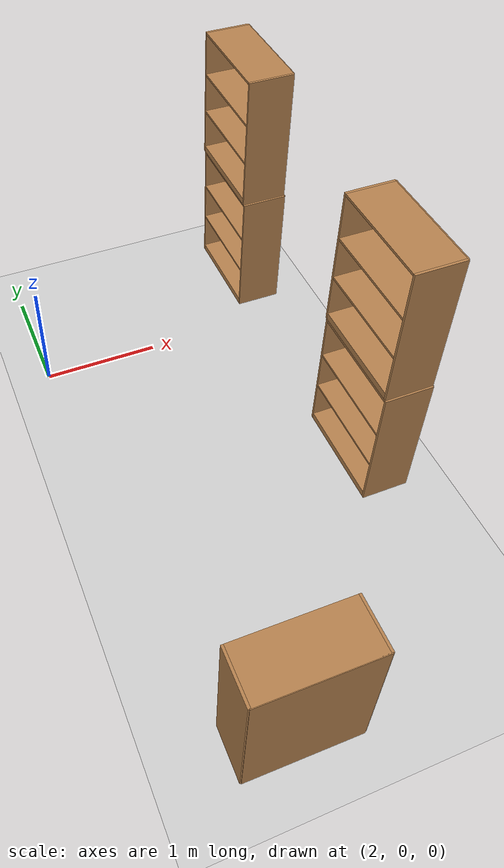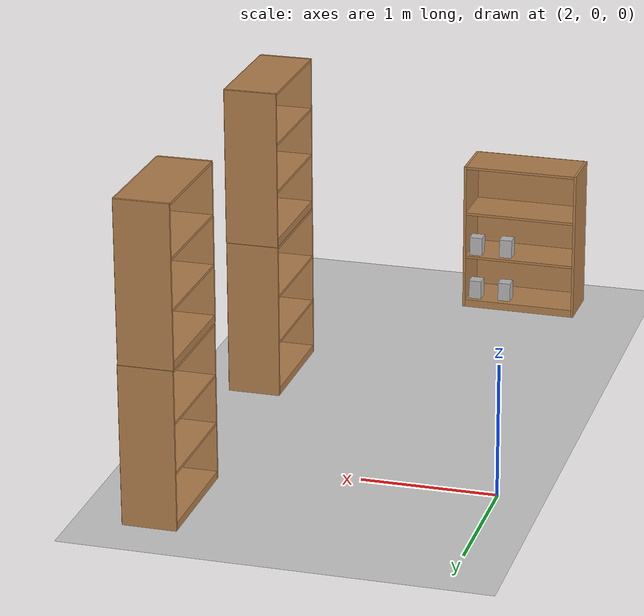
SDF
<sdf version="1.7">
 <world name="default">
  <model name="ground_plane">
   <static>1</static>
   <link name="link">
    <collision name="collision">
     <geometry><plane><normal>0 0 1</normal><size>100 100</size></plane></geometry>
     <surface><friction><ode><mu>100</mu><mu2>50</mu2></ode></friction></surface>
    </collision>
    <visual name="visual">
     <cast_shadows>0</cast_shadows>
     <geometry><plane><normal>0 0 1</normal><size>100 100</size></plane></geometry>
     <material>
      <script><uri>file://media/materials/scripts/gazebo.material</uri><name>Gazebo/Grey</name></script>
     </material>
    </visual>
   </link>
  </model>
  <model name="bookshelf_4_clone_1">
   <static>1</static>
   <link name="link">
    <inertial><mass>1</mass></inertial>
    <collision name="back">
     <pose>0 0.005 0.6 0 -0 0</pose>
     <geometry><box><size>0.9 0.01 1.2</size></box></geometry>
    </collision>
    <visual name="visual1">
     <pose>0 0.005 0.6 0 -0 0</pose>
     <geometry><box><size>0.9 0.01 1.2</size></box></geometry>
     <material>
      <script><uri>file://media/materials/scripts/gazebo.material</uri><name>Gazebo/Wood</name></script>
     </material>
    </visual>
    <collision name="left_side">
     <pose>0.45 -0.195 0.6 0 -0 0</pose>
     <geometry><box><size>0.02 0.4 1.2</size></box></geometry>
    </collision>
    <visual name="visual2">
     <pose>0.45 -0.195 0.6 0 -0 0</pose>
     <geometry><box><size>0.02 0.4 1.2</size></box></geometry>
     <material>
      <script><uri>file://media/materials/scripts/gazebo.material</uri><name>Gazebo/Wood</name></script>
     </material>
    </visual>
    <collision name="right_side">
     <pose>-0.45 -0.195 0.6 0 -0 0</pose>
     <geometry><box><size>0.02 0.4 1.2</size></box></geometry>
    </collision>
    <visual name="visual3">
     <pose>-0.45 -0.195 0.6 0 -0 0</pose>
     <geometry><box><size>0.02 0.4 1.2</size></box></geometry>
     <material>
      <script><uri>file://media/materials/scripts/gazebo.material</uri><name>Gazebo/Wood</name></script>
     </material>
    </visual>
    <collision name="bottom">
     <pose>0 -0.195 0.03 0 -0 0</pose>
     <geometry><box><size>0.88 0.4 0.06</size></box></geometry>
    </collision>
    <visual name="visual4">
     <pose>0 -0.195 0.03 0 -0 0</pose>
     <geometry><box><size>0.88 0.4 0.06</size></box></geometry>
     <material>
      <script><uri>file://media/materials/scripts/gazebo.material</uri><name>Gazebo/Wood</name></script>
     </material>
    </visual>
    <collision name="top">
     <pose>0 -0.195 1.19 0 -0 0</pose>
     <geometry><box><size>0.88 0.4 0.02</size></box></geometry>
    </collision>
    <visual name="visual5">
     <pose>0 -0.195 1.19 0 -0 0</pose>
     <geometry><box><size>0.88 0.4 0.02</size></box></geometry>
     <material>
      <script><uri>file://media/materials/scripts/gazebo.material</uri><name>Gazebo/Wood</name></script>
     </material>
    </visual>
    <collision name="low_shelf">
     <pose>0 -0.195 0.43 0 -0 0</pose>
     <geometry><box><size>0.88 0.4 0.02</size></box></geometry>
    </collision>
    <visual name="visual6">
     <pose>0 -0.195 0.43 0 -0 0</pose>
     <geometry><box><size>0.88 0.4 0.02</size></box></geometry>
     <material>
      <script><uri>file://media/materials/scripts/gazebo.material</uri><name>Gazebo/Wood</name></script>
     </material>
    </visual>
    <collision name="high_shelf">
     <pose>0 -0.195 0.8 0 -0 0</pose>
     <geometry><box><size>0.88 0.4 0.02</size></box></geometry>
    </collision>
    <visual name="visual7">
     <pose>0 -0.195 0.8 0 -0 0</pose>
     <geometry><box><size>0.88 0.4 0.02</size></box></geometry>
     <material>
      <script><uri>file://media/materials/scripts/gazebo.material</uri><name>Gazebo/Wood</name></script>
     </material>
    </visual>
   </link>
   <pose>4.39312 0.69592 0 0 0 -1.5727</pose>
  </model>
  <model name="bookshelf_4_clone_1_clone_clone_0">
   <static>1</static>
   <link name="link">
    <inertial><mass>1</mass></inertial>
    <collision name="back">
     <pose>0 0.005 0.6 0 -0 0</pose>
     <geometry><box><size>0.9 0.01 1.2</size></box></geometry>
    </collision>
    <visual name="visual1">
     <pose>0 0.005 0.6 0 -0 0</pose>
     <geometry><box><size>0.9 0.01 1.2</size></box></geometry>
     <material>
      <script><uri>file://media/materials/scripts/gazebo.material</uri><name>Gazebo/Wood</name></script>
     </material>
    </visual>
    <collision name="left_side">
     <pose>0.45 -0.195 0.6 0 -0 0</pose>
     <geometry><box><size>0.02 0.4 1.2</size></box></geometry>
    </collision>
    <visual name="visual2">
     <pose>0.45 -0.195 0.6 0 -0 0</pose>
     <geometry><box><size>0.02 0.4 1.2</size></box></geometry>
     <material>
      <script><uri>file://media/materials/scripts/gazebo.material</uri><name>Gazebo/Wood</name></script>
     </material>
    </visual>
    <collision name="right_side">
     <pose>-0.45 -0.195 0.6 0 -0 0</pose>
     <geometry><box><size>0.02 0.4 1.2</size></box></geometry>
    </collision>
    <visual name="visual3">
     <pose>-0.45 -0.195 0.6 0 -0 0</pose>
     <geometry><box><size>0.02 0.4 1.2</size></box></geometry>
     <material>
      <script><uri>file://media/materials/scripts/gazebo.material</uri><name>Gazebo/Wood</name></script>
     </material>
    </visual>
    <collision name="bottom">
     <pose>0 -0.195 0.03 0 -0 0</pose>
     <geometry><box><size>0.88 0.4 0.06</size></box></geometry>
    </collision>
    <visual name="visual4">
     <pose>0 -0.195 0.03 0 -0 0</pose>
     <geometry><box><size>0.88 0.4 0.06</size></box></geometry>
     <material>
      <script><uri>file://media/materials/scripts/gazebo.material</uri><name>Gazebo/Wood</name></script>
     </material>
    </visual>
    <collision name="top">
     <pose>0 -0.195 1.19 0 -0 0</pose>
     <geometry><box><size>0.88 0.4 0.02</size></box></geometry>
    </collision>
    <visual name="visual5">
     <pose>0 -0.195 1.19 0 -0 0</pose>
     <geometry><box><size>0.88 0.4 0.02</size></box></geometry>
     <material>
      <script><uri>file://media/materials/scripts/gazebo.material</uri><name>Gazebo/Wood</name></script>
     </material>
    </visual>
    <collision name="low_shelf">
     <pose>0 -0.195 0.43 0 -0 0</pose>
     <geometry><box><size>0.88 0.4 0.02</size></box></geometry>
    </collision>
    <visual name="visual6">
     <pose>0 -0.195 0.43 0 -0 0</pose>
     <geometry><box><size>0.88 0.4 0.02</size></box></geometry>
     <material>
      <script><uri>file://media/materials/scripts/gazebo.material</uri><name>Gazebo/Wood</name></script>
     </material>
    </visual>
    <collision name="high_shelf">
     <pose>0 -0.195 0.8 0 -0 0</pose>
     <geometry><box><size>0.88 0.4 0.02</size></box></geometry>
    </collision>
    <visual name="visual7">
     <pose>0 -0.195 0.8 0 -0 0</pose>
     <geometry><box><size>0.88 0.4 0.02</size></box></geometry>
     <material>
      <script><uri>file://media/materials/scripts/gazebo.material</uri><name>Gazebo/Wood</name></script>
     </material>
    </visual>
   </link>
   <pose>4.38615 0.705306 1.20741 0 0 -1.5727</pose>
  </model>
  <model name="bookshelf_5">
   <static>1</static>
   <link name="link">
    <inertial><mass>1</mass></inertial>
    <collision name="back">
     <pose>0 0.005 0.6 0 -0 0</pose>
     <geometry><box><size>0.9 0.01 1.2</size></box></geometry>
    </collision>
    <visual name="visual1">
     <pose>0 0.005 0.6 0 -0 0</pose>
     <geometry><box><size>0.9 0.01 1.2</size></box></geometry>
     <material>
      <script><uri>file://media/materials/scripts/gazebo.material</uri><name>Gazebo/Wood</name></script>
     </material>
    </visual>
    <collision name="left_side">
     <pose>0.45 -0.195 0.6 0 -0 0</pose>
     <geometry><box><size>0.02 0.4 1.2</size></box></geometry>
    </collision>
    <visual name="visual2">
     <pose>0.45 -0.195 0.6 0 -0 0</pose>
     <geometry><box><size>0.02 0.4 1.2</size></box></geometry>
     <material>
      <script><uri>file://media/materials/scripts/gazebo.material</uri><name>Gazebo/Wood</name></script>
     </material>
    </visual>
    <collision name="right_side">
     <pose>-0.45 -0.195 0.6 0 -0 0</pose>
     <geometry><box><size>0.02 0.4 1.2</size></box></geometry>
    </collision>
    <visual name="visual3">
     <pose>-0.45 -0.195 0.6 0 -0 0</pose>
     <geometry><box><size>0.02 0.4 1.2</size></box></geometry>
     <material>
      <script><uri>file://media/materials/scripts/gazebo.material</uri><name>Gazebo/Wood</name></script>
     </material>
    </visual>
    <collision name="bottom">
     <pose>0 -0.195 0.03 0 -0 0</pose>
     <geometry><box><size>0.88 0.4 0.06</size></box></geometry>
    </collision>
    <visual name="visual4">
     <pose>0 -0.195 0.03 0 -0 0</pose>
     <geometry><box><size>0.88 0.4 0.06</size></box></geometry>
     <material>
      <script><uri>file://media/materials/scripts/gazebo.material</uri><name>Gazebo/Wood</name></script>
     </material>
    </visual>
    <collision name="top">
     <pose>0 -0.195 1.19 0 -0 0</pose>
     <geometry><box><size>0.88 0.4 0.02</size></box></geometry>
    </collision>
    <visual name="visual5">
     <pose>0 -0.195 1.19 0 -0 0</pose>
     <geometry><box><size>0.88 0.4 0.02</size></box></geometry>
     <material>
      <script><uri>file://media/materials/scripts/gazebo.material</uri><name>Gazebo/Wood</name></script>
     </material>
    </visual>
    <collision name="low_shelf">
     <pose>0 -0.195 0.43 0 -0 0</pose>
     <geometry><box><size>0.88 0.4 0.02</size></box></geometry>
    </collision>
    <visual name="visual6">
     <pose>0 -0.195 0.43 0 -0 0</pose>
     <geometry><box><size>0.88 0.4 0.02</size></box></geometry>
     <material>
      <script><uri>file://media/materials/scripts/gazebo.material</uri><name>Gazebo/Wood</name></script>
     </material>
    </visual>
    <collision name="high_shelf">
     <pose>0 -0.195 0.8 0 -0 0</pose>
     <geometry><box><size>0.88 0.4 0.02</size></box></geometry>
    </collision>
    <visual name="visual7">
     <pose>0 -0.195 0.8 0 -0 0</pose>
     <geometry><box><size>0.88 0.4 0.02</size></box></geometry>
     <material>
      <script><uri>file://media/materials/scripts/gazebo.material</uri><name>Gazebo/Wood</name></script>
     </material>
    </visual>
   </link>
   <pose>2.65151 -3.85953 0 0 -0 3.12955</pose>
  </model>
  <model name="bookshelf_4_clone_clone">
   <static>1</static>
   <link name="link">
    <inertial><mass>1</mass></inertial>
    <collision name="back">
     <pose>0 0.005 0.6 0 -0 0</pose>
     <geometry><box><size>0.9 0.01 1.2</size></box></geometry>
    </collision>
    <visual name="visual1">
     <pose>0 0.005 0.6 0 -0 0</pose>
     <geometry><box><size>0.9 0.01 1.2</size></box></geometry>
     <material>
      <script><uri>file://media/materials/scripts/gazebo.material</uri><name>Gazebo/Wood</name></script>
     </material>
    </visual>
    <collision name="left_side">
     <pose>0.45 -0.195 0.6 0 -0 0</pose>
     <geometry><box><size>0.02 0.4 1.2</size></box></geometry>
    </collision>
    <visual name="visual2">
     <pose>0.45 -0.195 0.6 0 -0 0</pose>
     <geometry><box><size>0.02 0.4 1.2</size></box></geometry>
     <material>
      <script><uri>file://media/materials/scripts/gazebo.material</uri><name>Gazebo/Wood</name></script>
     </material>
    </visual>
    <collision name="right_side">
     <pose>-0.45 -0.195 0.6 0 -0 0</pose>
     <geometry><box><size>0.02 0.4 1.2</size></box></geometry>
    </collision>
    <visual name="visual3">
     <pose>-0.45 -0.195 0.6 0 -0 0</pose>
     <geometry><box><size>0.02 0.4 1.2</size></box></geometry>
     <material>
      <script><uri>file://media/materials/scripts/gazebo.material</uri><name>Gazebo/Wood</name></script>
     </material>
    </visual>
    <collision name="bottom">
     <pose>0 -0.195 0.03 0 -0 0</pose>
     <geometry><box><size>0.88 0.4 0.06</size></box></geometry>
    </collision>
    <visual name="visual4">
     <pose>0 -0.195 0.03 0 -0 0</pose>
     <geometry><box><size>0.88 0.4 0.06</size></box></geometry>
     <material>
      <script><uri>file://media/materials/scripts/gazebo.material</uri><name>Gazebo/Wood</name></script>
     </material>
    </visual>
    <collision name="top">
     <pose>0 -0.195 1.19 0 -0 0</pose>
     <geometry><box><size>0.88 0.4 0.02</size></box></geometry>
    </collision>
    <visual name="visual5">
     <pose>0 -0.195 1.19 0 -0 0</pose>
     <geometry><box><size>0.88 0.4 0.02</size></box></geometry>
     <material>
      <script><uri>file://media/materials/scripts/gazebo.material</uri><name>Gazebo/Wood</name></script>
     </material>
    </visual>
    <collision name="low_shelf">
     <pose>0 -0.195 0.43 0 -0 0</pose>
     <geometry><box><size>0.88 0.4 0.02</size></box></geometry>
    </collision>
    <visual name="visual6">
     <pose>0 -0.195 0.43 0 -0 0</pose>
     <geometry><box><size>0.88 0.4 0.02</size></box></geometry>
     <material>
      <script><uri>file://media/materials/scripts/gazebo.material</uri><name>Gazebo/Wood</name></script>
     </material>
    </visual>
    <collision name="high_shelf">
     <pose>0 -0.195 0.8 0 -0 0</pose>
     <geometry><box><size>0.88 0.4 0.02</size></box></geometry>
    </collision>
    <visual name="visual7">
     <pose>0 -0.195 0.8 0 -0 0</pose>
     <geometry><box><size>0.88 0.4 0.02</size></box></geometry>
     <material>
      <script><uri>file://media/materials/scripts/gazebo.material</uri><name>Gazebo/Wood</name></script>
     </material>
    </visual>
   </link>
   <pose>4.40573 -1.76165 0 0 0 -1.5727</pose>
  </model>
  <model name="bookshelf_4_clone_1_clone_clone_clone">
   <static>1</static>
   <link name="link">
    <inertial><mass>1</mass></inertial>
    <collision name="back">
     <pose>0 0.005 0.6 0 -0 0</pose>
     <geometry><box><size>0.9 0.01 1.2</size></box></geometry>
    </collision>
    <visual name="visual1">
     <pose>0 0.005 0.6 0 -0 0</pose>
     <geometry><box><size>0.9 0.01 1.2</size></box></geometry>
     <material>
      <script><uri>file://media/materials/scripts/gazebo.material</uri><name>Gazebo/Wood</name></script>
     </material>
    </visual>
    <collision name="left_side">
     <pose>0.45 -0.195 0.6 0 -0 0</pose>
     <geometry><box><size>0.02 0.4 1.2</size></box></geometry>
    </collision>
    <visual name="visual2">
     <pose>0.45 -0.195 0.6 0 -0 0</pose>
     <geometry><box><size>0.02 0.4 1.2</size></box></geometry>
     <material>
      <script><uri>file://media/materials/scripts/gazebo.material</uri><name>Gazebo/Wood</name></script>
     </material>
    </visual>
    <collision name="right_side">
     <pose>-0.45 -0.195 0.6 0 -0 0</pose>
     <geometry><box><size>0.02 0.4 1.2</size></box></geometry>
    </collision>
    <visual name="visual3">
     <pose>-0.45 -0.195 0.6 0 -0 0</pose>
     <geometry><box><size>0.02 0.4 1.2</size></box></geometry>
     <material>
      <script><uri>file://media/materials/scripts/gazebo.material</uri><name>Gazebo/Wood</name></script>
     </material>
    </visual>
    <collision name="bottom">
     <pose>0 -0.195 0.03 0 -0 0</pose>
     <geometry><box><size>0.88 0.4 0.06</size></box></geometry>
    </collision>
    <visual name="visual4">
     <pose>0 -0.195 0.03 0 -0 0</pose>
     <geometry><box><size>0.88 0.4 0.06</size></box></geometry>
     <material>
      <script><uri>file://media/materials/scripts/gazebo.material</uri><name>Gazebo/Wood</name></script>
     </material>
    </visual>
    <collision name="top">
     <pose>0 -0.195 1.19 0 -0 0</pose>
     <geometry><box><size>0.88 0.4 0.02</size></box></geometry>
    </collision>
    <visual name="visual5">
     <pose>0 -0.195 1.19 0 -0 0</pose>
     <geometry><box><size>0.88 0.4 0.02</size></box></geometry>
     <material>
      <script><uri>file://media/materials/scripts/gazebo.material</uri><name>Gazebo/Wood</name></script>
     </material>
    </visual>
    <collision name="low_shelf">
     <pose>0 -0.195 0.43 0 -0 0</pose>
     <geometry><box><size>0.88 0.4 0.02</size></box></geometry>
    </collision>
    <visual name="visual6">
     <pose>0 -0.195 0.43 0 -0 0</pose>
     <geometry><box><size>0.88 0.4 0.02</size></box></geometry>
     <material>
      <script><uri>file://media/materials/scripts/gazebo.material</uri><name>Gazebo/Wood</name></script>
     </material>
    </visual>
    <collision name="high_shelf">
     <pose>0 -0.195 0.8 0 -0 0</pose>
     <geometry><box><size>0.88 0.4 0.02</size></box></geometry>
    </collision>
    <visual name="visual7">
     <pose>0 -0.195 0.8 0 -0 0</pose>
     <geometry><box><size>0.88 0.4 0.02</size></box></geometry>
     <material>
      <script><uri>file://media/materials/scripts/gazebo.material</uri><name>Gazebo/Wood</name></script>
     </material>
    </visual>
   </link>
   <pose>4.40422 -1.75184 1.20741 0 0 -1.5727</pose>
  </model>
  <model name="tea_box_clone">
   <link name="link">
    <pose>0 0 0.075 0 -0 0</pose>
    <visual name="visual">
     <geometry><box><size>0.1 0.1 0.15</size></box></geometry>
     <material>
      <script>
       <uri>model://tea_box/materials/scripts</uri>
       <uri>model://tea_box/materials/textures</uri>
       <name>tea_pat</name>
      </script>
     </material>
    </visual>
    <collision name="collision"><geometry><box><size>0.1 0.1 0.15</size></box></geometry></collision>
   </link>
   <static>1</static>
   <pose>2.78357 -3.56921 0.061312 0 -0 1.56458</pose>
  </model>
  <model name="tea_box_clone_clone_0">
   <link name="link">
    <pose>0 0 0.075 0 -0 0</pose>
    <visual name="visual">
     <geometry><box><size>0.1 0.1 0.15</size></box></geometry>
     <material>
      <script>
       <uri>model://tea_box/materials/scripts</uri>
       <uri>model://tea_box/materials/textures</uri>
       <name>tea_pat</name>
      </script>
     </material>
    </visual>
    <collision name="collision"><geometry><box><size>0.1 0.1 0.15</size></box></geometry></collision>
   </link>
   <static>1</static>
   <pose>3.02264 -3.55748 0.061312 0 -0 1.56458</pose>
  </model>
  <model name="tea_box_clone_clone_clone">
   <link name="link">
    <pose>0 0 0.075 0 -0 0</pose>
    <visual name="visual">
     <geometry><box><size>0.1 0.1 0.15</size></box></geometry>
     <material>
      <script>
       <uri>model://tea_box/materials/scripts</uri>
       <uri>model://tea_box/materials/textures</uri>
       <name>tea_pat</name>
      </script>
     </material>
    </visual>
    <collision name="collision"><geometry><box><size>0.1 0.1 0.15</size></box></geometry></collision>
   </link>
   <static>1</static>
   <pose>2.77129 -3.5466 0.44421 0 -0 1.56458</pose>
  </model>
  <model name="tea_box_clone_clone_clone_clone">
   <link name="link">
    <pose>0 0 0.075 0 -0 0</pose>
    <visual name="visual">
     <geometry><box><size>0.1 0.1 0.15</size></box></geometry>
     <material>
      <script>
       <uri>model://tea_box/materials/scripts</uri>
       <uri>model://tea_box/materials/textures</uri>
       <name>tea_pat</name>
      </script>
     </material>
    </visual>
    <collision name="collision"><geometry><box><size>0.1 0.1 0.15</size></box></geometry></collision>
   </link>
   <static>1</static>
   <pose>3.01591 -3.53853 0.44421 0 -0 1.56458</pose>
  </model>
 </world>
</sdf>
